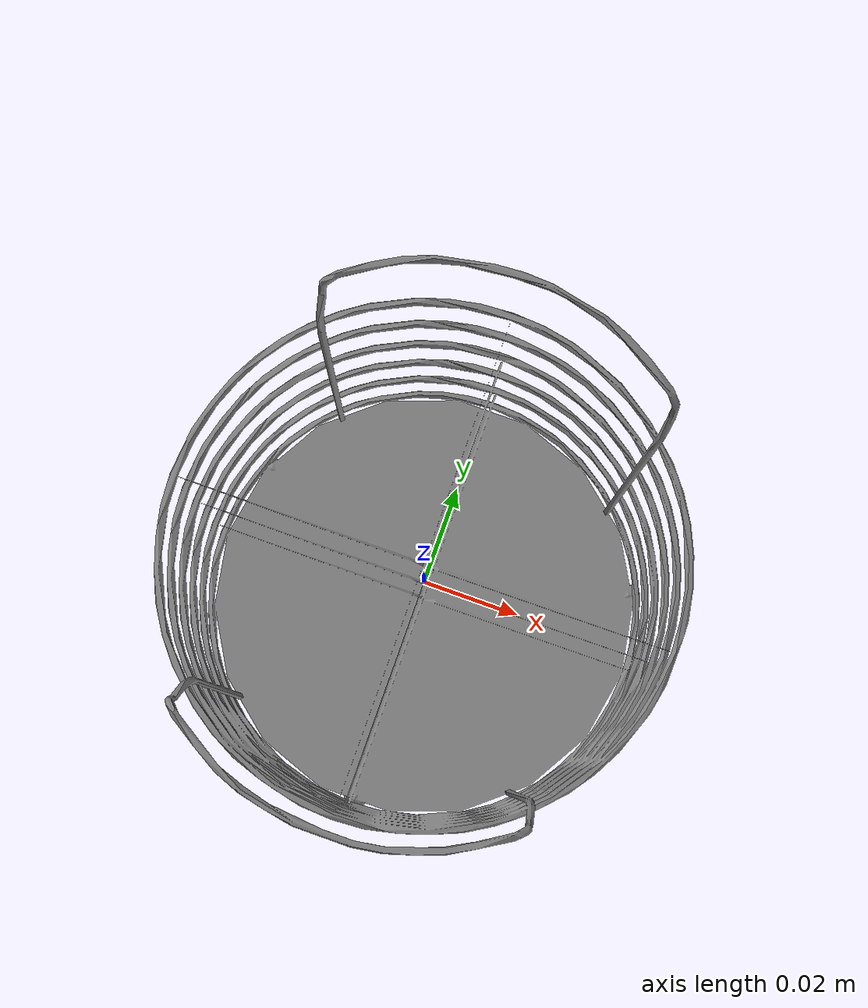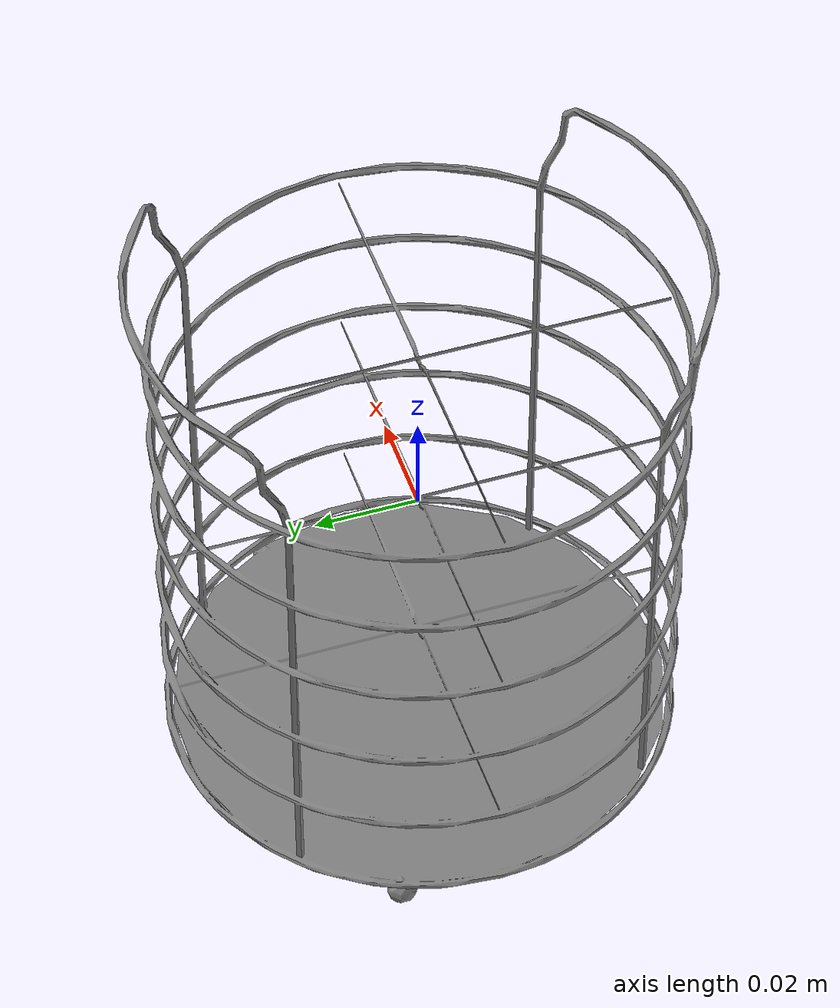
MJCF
<mujoco model="cutlery_holder">
    <compiler angle="radian" meshdir="../meshes/" texturedir="../textures/" autolimits="true" inertiafromgeom="true"/>
    <asset>
        <mesh name="CutleryHolder" file="obj/CutleryHolder.obj" />
        <mesh name="UCX_CutleryHolder_001" file="stl/UCX_CutleryHolder_1001.stl" />
		<mesh name="UCX_CutleryHolder_002" file="stl/UCX_CutleryHolder_1002.stl" />
		<mesh name="UCX_CutleryHolder_003" file="stl/UCX_CutleryHolder_1003.stl" />
		<mesh name="UCX_CutleryHolder_004" file="stl/UCX_CutleryHolder_1004.stl" />

    </asset>
    <default>
        <default class="cutlery_holder_visual">
            <geom contype="0" conaffinity="0" />
        </default>
        <default class="cutlery_holder_collision">
            <geom rgba="0.9 0.9 0.9 0.0" />
        </default>
    </default>
    <worldbody>
        <body name="cutlery_holder">
            <inertial mass="0.0024092223029583693" pos="0.00039242958882823586 -0.00014951407501939684 0.018528643995523453" quat="0.7097811698913574 -0.0034899921156466007 -0.7042561173439026 0.01489575020968914" diaginertia="6.981517799431458e-06 9.253744792658836e-06 9.59177123149857e-06"/>
            <geom name="CutleryHolder" pos="0.0 0.0 0.0" quat="1.0 0.0 0.0 0.0" type="mesh" mesh="CutleryHolder" class="cutlery_holder_visual" />
            <geom name="UCX_CutleryHolder_001" type="mesh" pos="0.0 0.0 0.0" quat="1.0 0.0 0.0 0.0" mesh="UCX_CutleryHolder_001" class="cutlery_holder_collision"/>
            <geom name="UCX_CutleryHolder_002" type="mesh" pos="0.0 0.0 0.0" quat="1.0 0.0 0.0 0.0" mesh="UCX_CutleryHolder_002" class="cutlery_holder_collision"/>
            <geom name="UCX_CutleryHolder_003" type="mesh" pos="0.0 0.0 0.0" quat="1.0 0.0 0.0 0.0" mesh="UCX_CutleryHolder_003" class="cutlery_holder_collision"/>
            <geom name="UCX_CutleryHolder_004" type="mesh" pos="0.0 0.0 0.0" quat="1.0 0.0 0.0 0.0" mesh="UCX_CutleryHolder_004" class="cutlery_holder_collision"/>

        </body>
    </worldbody>
    <equality />
    <contact />
</mujoco>
